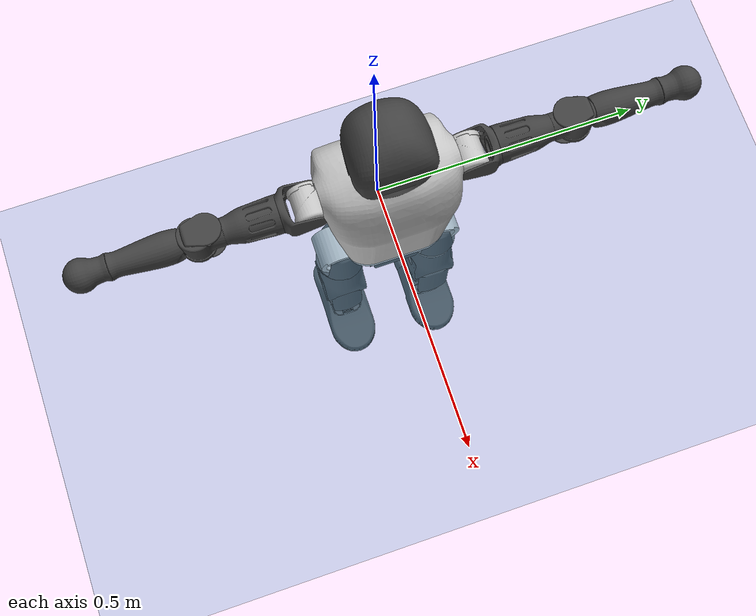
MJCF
<mujoco model="T1">
  <compiler angle="radian" assetdir="assets" balanceinertia="true" inertiafromgeom="false"/>

  <option timestep="0.005" density="1.2" viscosity="2e-05"/>

  <size nkey="1"/>

  <visual>
    <quality shadowsize="8192"/>
    <map shadowclip="0.5"/>
  </visual>

  <default>
    <default class="/">
      <joint armature="0.01" damping="0.01" frictionloss="0.1"/>
      <geom contype="0" conaffinity="0" group="1" solref="-1000 -80"/>
      <site size="0.01 0.005 0.005" group="5"/>
      <general forcelimited="true" biastype="affine" gainprm="25" biasprm="0 -25 -0.6"/>
      <default class="t1">
        <geom rgba="0.25 0.25 0.25 1"/>
        <default class="visual">
          <geom type="mesh" group="2"/>
        </default>
        <default class="collision">
          <geom group="3"/>
        </default>
        <default class="foot">
          <geom size="0.1115 0.05 0.015" type="box" condim="6" group="4" priority="1" solimp="0.015 1 0.015"/>
        </default>
        <default class="reward_collision_sphere">
          <geom group="5" rgba="1 0 0 1"/>
        </default>
      </default>
    </default>
  </default>

  <asset>
    <texture type="skybox" colorspace="auto" name="//unnamed_texture_0" builtin="gradient" rgb1="0.95 0.95 0.95" rgb2="0.95 0.95 0.95" width="100" height="600"/>
    <texture type="2d" colorspace="auto" name="texplane" builtin="checker" rgb1="0.345 0.575 0.748" rgb2="0.345 0.575 0.748" markrgb="1 1 1" width="512" height="512"/>
    <material name="MatPlane" class="/" texture="texplane" texuniform="true" texrepeat="2 2" specular="0.9"/>
    <mesh name="Trunk" class="/" file="Trunk.stl"/>
    <mesh name="H1" class="/" file="H1.stl"/>
    <mesh name="H2" class="/" file="H2.stl"/>
    <mesh name="AL1" class="/" file="AL1.stl"/>
    <mesh name="AL2" class="/" file="AL2.stl"/>
    <mesh name="AL3" class="/" file="AL3.stl"/>
    <mesh name="left_hand_link" class="/" file="left_hand_link.stl"/>
    <mesh name="AR1" class="/" file="AR1.stl"/>
    <mesh name="AR2" class="/" file="AR2.stl"/>
    <mesh name="AR3" class="/" file="AR3.stl"/>
    <mesh name="right_hand_link" class="/" file="right_hand_link.stl"/>
    <mesh name="Waist" class="/" file="Waist.stl"/>
    <mesh name="Hip_Pitch_Left" class="/" file="Hip_Pitch_Left.stl"/>
    <mesh name="Hip_Roll_Left" class="/" file="Hip_Roll_Left.stl"/>
    <mesh name="Hip_Yaw_Left" class="/" file="Hip_Yaw_Left.stl"/>
    <mesh name="Shank_Left" class="/" file="Shank_Left.stl"/>
    <mesh name="Ankle_Cross_Left" class="/" file="Ankle_Cross_Left.stl"/>
    <mesh name="left_foot_link" class="/" file="left_foot_link.stl"/>
    <mesh name="Hip_Pitch_Right" class="/" file="Hip_Pitch_Right.stl"/>
    <mesh name="Hip_Roll_Right" class="/" file="Hip_Roll_Right.stl"/>
    <mesh name="Hip_Yaw_Right" class="/" file="Hip_Yaw_Right.stl"/>
    <mesh name="Shank_Right" class="/" file="Shank_Right.stl"/>
    <mesh name="Ankle_Cross_Right" class="/" file="Ankle_Cross_Right.stl"/>
    <mesh name="right_foot_link" class="/" file="right_foot_link.stl"/>
  </asset>

  <worldbody>
    <geom name="floor" class="/" size="100 100 0.125" type="plane" group="0" material="MatPlane"/>
    <light name="toplight_shadow" class="/" pos="0 0 5" dir="0.0990148 0.0990148 -0.990148" type="directional" ambient="0.04 0.04 0.04" diffuse="0.55 0.55 0.55" specular="0.12 0.12 0.12"/>
    <light name="toplight_fill" class="/" pos="0 0 5" dir="0.0990148 0.0990148 -0.990148" type="directional" castshadow="false" ambient="0.04 0.04 0.04" diffuse="0.3 0.3 0.3" specular="0.08 0.08 0.08"/>
    <body name="trunk" childclass="t1" pos="-0.00237684 0.00140548 -6.78811e-05" quat="1 -0.000752909 0.000433858 0.000155382">
      <inertial pos="0.0480491 0.00197882 0.08954" quat="0.999973 0.00250058 -0.00649555 0.00219346" mass="7.44793" diaginertia="0.0432552 0.0413158 0.0200941"/>
      <joint name="//unnamed_joint_0" type="free" armature="0" damping="0" frictionloss="0"/>
      <geom name="//unnamed_geom_1" class="visual" rgba="0.76 0.76 0.76 1" mesh="Trunk"/>
      <geom name="//unnamed_geom_2" class="collision" size="0.0645966 0.0861289 0.129193" pos="0.0518325 0 0.0994135" type="box"/>
      <geom name="//unnamed_geom_3" class="reward_collision_sphere" size="0.0990482" pos="0.0518325 0 0.0828446"/>
      <geom name="//unnamed_geom_4" class="reward_collision_sphere" size="0.0129193" pos="0.0518325 0.0757814 0"/>
      <geom name="//unnamed_geom_5" class="reward_collision_sphere" size="0.0129193" pos="0.0518325 -0.0757814 0"/>
      <geom name="//unnamed_geom_6" class="reward_collision_sphere" size="0.0129193" pos="0.0518325 0.0953954 0.14912"/>
      <geom name="//unnamed_geom_7" class="reward_collision_sphere" size="0.0129193" pos="0.0518325 -0.0953954 0.14912"/>
      <site name="imu" pos="-0.000344191 -0.013227 0.0131608" size="0.00861289"/>
      <camera name="track" pos="0 -1.78309 0" quat="0.707107 0.707107 0 0" mode="trackcom"/>
      <camera name="ego_camera" pos="0.105393 0 0.347947" quat="-0.5 -0.5 0.5 0.5"/>
      <body name="H1" pos="0.0520039 -0.00186343 0.200985" quat="1 4.67775e-05 9.88064e-05 -1.24953e-05">
        <inertial pos="-0.000208533 0.000643336 0.0474186" quat="0.762524 -0.0218439 -0.0167236 0.646375" mass="0.270289" diaginertia="0.000116573 0.000124424 5.74318e-05"/>
        <joint name="AAHead_yaw" pos="0 0 0" axis="0.011098 -0.00339843 0.999933" range="-1.61244 1.58138" armature="0.00885982" damping="0" frictionloss="0.0684681"/>
        <geom name="//unnamed_geom_8" class="visual" mesh="H1"/>
        <body name="H2" pos="-0.00226864 -0.00017909 0.0518901" quat="1 0.00029021 9.38765e-05 -0.000349777">
          <inertial pos="0.00789452 0.000998814 0.0814756" quat="0.989975 0.0963372 -0.0691983 -0.0766848" mass="0.402803" diaginertia="0.000972197 0.00113415 0.000662463"/>
          <joint name="Head_pitch" pos="0 0 0" axis="0.00753994 -0.999945 -0.00724152" range="-1.23945 0.37391" armature="0.00982241" damping="0.0103229" frictionloss="0.0747578"/>
          <geom name="//unnamed_geom_9" class="visual" mesh="H2"/>
          <geom name="//unnamed_geom_10" class="collision" size="0.0689031" pos="0.00863874 0 0.0911291"/>
          <geom name="//unnamed_geom_11" class="reward_collision_sphere" size="0.077516" pos="0.0172775 0 0.0828446"/>
        </body>
      </body>
      <body name="AL1" pos="0.0504276 0.099008 0.17882" quat="1 0.000148688 4.23091e-05 0.000259697">
        <inertial pos="-0.00251381 0.0402922 0.00150717" quat="0.497161 0.488605 -0.503629 0.510346" mass="0.329957" diaginertia="0.000654721 0.000747361 0.000112918"/>
        <joint name="Left_Shoulder_Pitch" pos="0 0 0" axis="0.00761583 0.999969 -0.00201566" stiffness="0.00107125" range="-3.32914 1.26606" armature="0.0089076" damping="0.00430224" frictionloss="0.0768854"/>
        <geom name="//unnamed_geom_12" class="visual" rgba="0.76 0.76 0.76 1" mesh="AL1"/>
        <body name="AL2" pos="-8.45197e-05 0.0423055 -0.00192862" quat="1 -0.000240788 0.000172828 0.000369953">
          <inertial pos="0.00308698 0.0323445 -0.000417115" quat="0.489422 0.509821 -0.490509 0.509853" mass="0.0986992" diaginertia="0.000188658 0.000194033 6.49769e-05"/>
          <joint name="Left_Shoulder_Roll" pos="0 0 0" axis="-0.999954 0.00739923 0.0060647" range="-1.61841 1.76236" armature="0.00868887" damping="0.00515986" frictionloss="0.0794184"/>
          <geom name="//unnamed_geom_13" class="visual" mesh="AL2"/>
          <body name="AL3" pos="-0.000742033 0.0548129 0.00178718" quat="1 6.59881e-05 -5.42702e-05 -3.99028e-05">
            <inertial pos="0.00278526 0.0767432 0.000210671" quat="0.713262 0.700879 -0.00313115 -0.00391016" mass="0.650426" diaginertia="0.0063052 0.00738661 0.000243826"/>
            <joint name="Left_Elbow_Pitch" pos="0 0 0" axis="0.00320277 -0.999994 -0.0012159" range="-2.2544 2.26437" armature="0.0082514" damping="0.0110633" frictionloss="0.0761153"/>
            <geom name="//unnamed_geom_14" class="visual" mesh="AL3"/>
            <geom name="//unnamed_geom_15" class="collision" size="0.0258387 0.0645966" pos="0 0.0445773 0" quat="0.707105 0.707108 0 0" type="cylinder"/>
            <geom name="//unnamed_geom_16" class="reward_collision_sphere" size="0.0310064"/>
            <body name="left_hand_link" pos="-0.00130986 0.130685 0.00403242" quat="0.999999 -0.000811775 -0.000603246 -0.000151751">
              <inertial pos="0.000612182 0.0972475 0.00103588" quat="0.712468 0.701693 0.00336952 -0.00223562" mass="0.207376" diaginertia="0.00398933 0.00466324 8.79755e-05"/>
              <joint name="Left_Elbow_Yaw" pos="0 0 0" axis="-0.0119718 0.002226 0.999926" range="-2.48591 -0.0474749" armature="0.00795303" damping="0.0187834" frictionloss="0.0897531"/>
              <geom name="//unnamed_geom_17" class="visual" mesh="left_hand_link"/>
              <geom name="//unnamed_geom_18" class="collision" size="0.0258387 0.0753628" pos="0 0.115901 0" quat="0.707105 0.707108 0 0" type="cylinder"/>
              <geom name="//unnamed_geom_19" class="reward_collision_sphere" size="0.0430644"/>
              <geom name="//unnamed_geom_20" class="reward_collision_sphere" size="0.0301451" pos="0 0.09807 0"/>
              <geom name="//unnamed_geom_21" class="reward_collision_sphere" size="0.0301451" pos="0 0.191682 0"/>
            </body>
          </body>
        </body>
      </body>
      <body name="AR1" pos="0.0509252 -0.0913651 0.180472" quat="0.999999 0.00017518 -0.000735567 -0.000892786">
        <inertial pos="-0.00145748 -0.0388723 -0.00288476" quat="0.497076 0.502593 -0.505729 0.494524" mass="0.33265" diaginertia="0.000642009 0.000739574 0.000111793"/>
        <joint name="Right_Shoulder_Pitch" pos="0 0 0" axis="0.012756 -0.999918 0.000948388" range="-1.23434 3.29558" armature="0.00969562" damping="0.0102512" frictionloss="0.0842365"/>
        <geom name="//unnamed_geom_22" class="visual" rgba="0.76 0.76 0.76 1" mesh="AR1"/>
        <body name="AR2" pos="-3.31364e-05 -0.0429426 0.00121798" quat="1 0.000544349 6.48962e-05 -0.00018533">
          <inertial pos="0.00207921 -0.0346513 -0.000881469" quat="0.509704 0.490463 -0.516943 0.482098" mass="0.0996926" diaginertia="0.000180741 0.00018374 6.86677e-05"/>
          <joint name="Right_Shoulder_Roll" pos="0 0 0" axis="-0.999924 0.00447678 -0.0115173" range="-1.75606 1.57149" armature="0.00957438" damping="0.00876163" frictionloss="0.07783"/>
          <geom name="//unnamed_geom_23" class="visual" mesh="AR2"/>
          <body name="AR3" pos="-0.0017435 -0.0525366 -0.00211665" quat="1 -0.000173089 0.000321826 -0.000155245">
            <inertial pos="-0.00400512 -0.0753049 -0.00160325" quat="0.709845 0.70435 0.00312208 -0.00141631" mass="0.648833" diaginertia="0.00635751 0.00721272 0.000233729"/>
            <joint name="Right_Elbow_Pitch" pos="0 0 0" axis="0.000270821 1 -0.000654491" range="-2.32012 2.28574" armature="0.00830897" damping="0.00788875" frictionloss="0.0685439"/>
            <geom name="//unnamed_geom_24" class="visual" mesh="AR3"/>
            <geom name="//unnamed_geom_25" class="collision" size="0.0258387 0.0645966" pos="0 -0.0445773 0" quat="0.707105 0.707108 0 0" type="cylinder"/>
            <geom name="//unnamed_geom_26" class="reward_collision_sphere" size="0.0310064"/>
            <body name="right_hand_link" pos="-0.00118089 -0.128008 0.00263806" quat="1 -0.000182295 -0.000169215 -8.42025e-06">
              <inertial pos="-0.000378663 -0.0948288 -0.00137314" quat="0.704997 0.70921 -0.000812406 0.00053017" mass="0.202343" diaginertia="0.00376848 0.00438935 7.85127e-05"/>
              <joint name="Right_Elbow_Yaw" pos="0 0 0" axis="0.0173349 0.00296624 0.999845" range="-0.0531578 2.44091" armature="0.0076349" damping="0.00802532" frictionloss="0.0922744"/>
              <geom name="//unnamed_geom_27" class="visual" mesh="right_hand_link"/>
              <geom name="//unnamed_geom_28" class="collision" size="0.0258387 0.0753628" pos="0 -0.115901 0" quat="0.707105 0.707108 0 0" type="cylinder"/>
              <geom name="//unnamed_geom_29" class="reward_collision_sphere" size="0.0430644"/>
              <geom name="//unnamed_geom_30" class="reward_collision_sphere" size="0.0301451" pos="0 -0.09807 0"/>
              <geom name="//unnamed_geom_31" class="reward_collision_sphere" size="0.0301451" pos="0 -0.191682 0"/>
            </body>
          </body>
        </body>
      </body>
      <body name="Waist" pos="0.0581605 -0.00329615 -0.0948447" quat="0.999999 -0.000711218 0.00074583 0.00111324">
        <inertial pos="0.00448562 -0.000238195 0.00580124" quat="0.984166 0.00501291 -0.176828 -0.0111482" mass="1.6351" diaginertia="0.00247037 0.0027914 0.0017316"/>
        <joint name="Waist" pos="0 0 0" axis="-0.000904933 -0.00489208 0.999988" stiffness="0.00013021" range="-1.56457 1.62374" armature="0.0088173" damping="0.00809347" frictionloss="0.0822723"/>
        <geom name="//unnamed_geom_32" class="visual" mesh="Waist"/>
        <body name="Hip_Pitch_Left" pos="0.0027206 0.0944244 -0.00158106" quat="0.999999 -0.000458247 0.00126966 0.000439035">
          <inertial pos="-0.0016568 -0.00634783 -0.0153059" quat="0.973435 0.228666 0.0107363 0.00445499" mass="0.6716" diaginertia="0.000903848 0.00083018 0.000480312"/>
          <joint name="Left_Hip_Pitch" pos="0 0 0" axis="0.00143913 0.999994 -0.0032252" range="-1.75777 1.52093" armature="0.00922416" damping="0.0145365" frictionloss="0.0873754"/>
          <geom name="//unnamed_geom_33" class="visual" rgba="0.76 0.76 0.76 1" mesh="Hip_Pitch_Left"/>
          <body name="Hip_Roll_Left" pos="0.00474742 -0.0025157 -0.00958968" quat="1 -3.5918e-06 -4.22098e-06 -4.44675e-05">
            <inertial pos="0.000397006 0.00347592 -0.0468146" quat="0.707038 -0.00667858 -0.0049127 0.707127" mass="0.247903" diaginertia="0.000855262 0.000886356 0.000190826"/>
            <joint name="Left_Hip_Roll" pos="0 0 0" axis="-0.999954 0.00391226 -0.00880123" range="-1.61642 0.234043" armature="0.00973869" damping="0.0274777" frictionloss="0.0847446"/>
            <geom name="//unnamed_geom_34" class="visual" mesh="Hip_Roll_Left"/>
            <geom name="//unnamed_geom_35" class="reward_collision_sphere" size="0.0473709"/>
            <body name="Hip_Yaw_Left" pos="0.00625747 -0.00237274 -0.0650797" quat="1 -9.29044e-05 -0.000157266 -0.000588498">
              <inertial pos="-0.00375414 0.00168924 -0.0741617" quat="0.690301 -0.0330745 -0.0410787 0.721598" mass="1.41448" diaginertia="0.012293 0.014833 0.00104224"/>
              <joint name="Left_Hip_Yaw" pos="0 0 0" axis="0.00406736 -0.0018252 -0.99999" stiffness="0.00757817" range="-0.934677 0.969684" armature="0.0088456" damping="0.00782322" frictionloss="0.0824337"/>
              <geom name="//unnamed_geom_36" class="visual" mesh="Hip_Yaw_Left"/>
              <geom name="//unnamed_geom_37" class="collision" size="0.0430644 0.0689031" type="cylinder"/>
              <body name="Shank_Left" pos="-0.00509275 -0.000549235 -0.102064" quat="1 -0.000415701 -0.00014319 -0.000507655">
                <inertial pos="-0.00469646 -0.000605335 -0.10244" quat="0.997351 -0.000559615 -0.0199146 0.0699583" mass="1.14966" diaginertia="0.0173331 0.020903 0.000753491"/>
                <joint name="Left_Knee_Pitch" pos="0 0 0" axis="-0.00840225 0.999959 0.00337619" range="-0.00630473 2.32279" armature="0.00881104" damping="0.0026281" frictionloss="0.0845894"/>
                <geom name="//unnamed_geom_38" class="visual" mesh="Shank_Left"/>
                <geom name="//unnamed_geom_39" class="collision" size="0.0430644 0.0645966" pos="0 0 -0.0994135" type="cylinder"/>
                <geom name="//unnamed_geom_40" class="reward_collision_sphere" size="0.0559838"/>
                <body name="Ankle_Cross_Left" pos="-0.0022099 -0.00130203 -0.236453" quat="1 -0.000347817 -0.000498721 -0.000468339">
                  <inertial pos="0.00100918 0.0028429 -0.00521445" quat="0.443331 0.550801 0.551295 0.442887" mass="0.0471238" diaginertia="1.35719e-05 1.42433e-05 4.50483e-06"/>
                  <joint name="Left_Ankle_Pitch" pos="0 0 0" axis="-0.00237618 0.999997 -0.000397891" stiffness="0.000607406" range="-0.878638 0.353632" armature="0.00709632" damping="0.000835531" frictionloss="0.0874509"/>
                  <geom name="//unnamed_geom_41" class="visual" mesh="Ankle_Cross_Left"/>
                  <body name="left_foot_link" pos="-0.00278115 -0.000466997 -0.0096626" quat="0.999998 -0.000915972 -4.98699e-05 0.00187804">
                    <inertial pos="4.31779e-05 -0.00127375 -0.00956934" quat="0.00597738 0.622785 0.00840063 0.782325" mass="0.41832" diaginertia="0.00121678 0.00131467 0.000845043"/>
                    <joint name="Left_Ankle_Roll" pos="0 0 0" axis="-0.999819 -0.00753298 -0.0174675" stiffness="0.00115945" range="-0.395521 0.45452" armature="0.00816483" damping="0.0092864" frictionloss="0.0749509"/>
                    <geom name="//unnamed_geom_42" class="visual" mesh="left_foot_link"/>
                    <geom name="left_foot" class="foot" size="0.102248 0.0479883 0.0116709" pos="0.00863874 0 -0.0124267"/>
                    <geom name="//unnamed_geom_44" class="reward_collision_sphere" size="0.044787" pos="0.00863874 0 -0.0124267"/>
                    <geom name="//unnamed_geom_45" class="reward_collision_sphere" size="0.0258387" pos="0.0820681 -0.0205055 -0.0124267"/>
                    <geom name="//unnamed_geom_46" class="reward_collision_sphere" size="0.0258387" pos="-0.0604712 -0.0205055 -0.0124267"/>
                    <site name="left_foot" class="foot" pos="0.00863874 0 -0.0124267" size="0.00861289"/>
                  </body>
                </body>
              </body>
            </body>
          </body>
        </body>
        <body name="Hip_Pitch_Right" pos="-0.00487638 -0.0959571 0.00416014" quat="1 -8.19649e-05 0.000271111 -0.00010997">
          <inertial pos="0.00326244 0.00847538 -0.0170508" quat="0.971684 -0.236016 0.00563157 -0.00977144" mass="0.655948" diaginertia="0.000862193 0.000818915 0.000498223"/>
          <joint name="Right_Hip_Pitch" pos="0 0 0" axis="-0.00859098 -0.999956 -0.00368847" range="-1.62141 1.78204" armature="0.00760476" damping="0.0207021" frictionloss="0.0962104"/>
          <geom name="//unnamed_geom_47" class="visual" rgba="0.76 0.76 0.76 1" mesh="Hip_Pitch_Right"/>
          <body name="Hip_Roll_Right" pos="-0.00117216 0.000393718 -0.0125426" quat="1 -8.37329e-05 -0.000536352 0.000254924">
            <inertial pos="0.000760979 0.00223668 -0.0440908" quat="0.709928 -0.0110603 -0.00542909 0.704167" mass="0.246758" diaginertia="0.000788327 0.00080607 0.000195899"/>
            <joint name="Right_Hip_Roll" pos="0 0 0" axis="-0.99999 0.000407261 0.00442784" range="-0.244175 1.5738" armature="0.0086313" damping="0.0200355" frictionloss="0.0878775"/>
            <geom name="//unnamed_geom_48" class="visual" mesh="Hip_Roll_Right"/>
            <geom name="//unnamed_geom_49" class="reward_collision_sphere" size="0.0473709"/>
            <body name="Hip_Yaw_Right" pos="0.00345687 -0.00182663 -0.071598" quat="1 1.09018e-05 4.56163e-05 -6.00206e-05">
              <inertial pos="-0.00717198 -0.00214782 -0.0729282" quat="0.714828 -0.0301364 -0.0345247 0.697797" mass="1.35848" diaginertia="0.0116922 0.0135784 0.000949426"/>
              <joint name="Right_Hip_Yaw" pos="0 0 0" axis="-0.000247628 -0.00100343 -0.999999" range="-0.985818 1.02921" armature="0.00950166" damping="0" frictionloss="0.0751296"/>
              <geom name="//unnamed_geom_50" class="visual" mesh="Hip_Yaw_Right"/>
              <geom name="//unnamed_geom_51" class="collision" size="0.0430644 0.0689031" type="cylinder"/>
              <body name="Shank_Right" pos="-0.0107006 -0.00153763 -0.111135" quat="0.999999 0.000828934 5.18629e-05 0.000943314">
                <inertial pos="-0.00644537 0.000969696 -0.100641" quat="0.999261 -0.000682238 -0.0230756 -0.0307425" mass="1.12252" diaginertia="0.0163891 0.0196528 0.000784496"/>
                <joint name="Right_Knee_Pitch" pos="0 0 0" axis="-0.00461736 -0.999984 0.00329346" range="-2.29653 -0.0117346" armature="0.00747779" damping="0.0114656" frictionloss="0.0778469"/>
                <geom name="//unnamed_geom_52" class="visual" mesh="Shank_Right"/>
                <geom name="//unnamed_geom_53" class="collision" size="0.0430644 0.0645966" pos="0 0 -0.0994135" type="cylinder"/>
                <geom name="//unnamed_geom_54" class="reward_collision_sphere" size="0.0559838"/>
                <body name="Ankle_Cross_Right" pos="0.00161311 0.00192246 -0.235263" quat="1 7.58784e-05 -0.000110442 -0.000162724">
                  <inertial pos="-0.00287983 0.00201838 -0.00686327" quat="0.442879 0.55144 0.550792 0.443171" mass="0.0460773" diaginertia="1.36132e-05 1.43192e-05 4.31916e-06"/>
                  <joint name="Right_Ankle_Pitch" pos="0 0 0" axis="0.00524309 -0.999964 -0.00662914" stiffness="0.000965698" range="-0.331589 0.873361" armature="0.00868678" damping="0.0158027" frictionloss="0.0826369"/>
                  <geom name="//unnamed_geom_55" class="visual" mesh="Ankle_Cross_Right"/>
                  <body name="right_foot_link" pos="-0.000823286 -0.00163901 -0.0196653" quat="1 -0.000269381 -0.000100664 -0.00023249">
                    <inertial pos="-8.2853e-05 -0.00122311 -0.00384581" quat="-0.00378126 0.624873 0.00114916 0.780716" mass="0.448948" diaginertia="0.00139298 0.00140015 0.00093356"/>
                    <joint name="Right_Ankle_Roll" pos="0 0 0" axis="-0.999948 -0.000208415 0.0101714" stiffness="0.00633071" range="-0.425232 0.387429" armature="0.0105849" damping="0.0256091" frictionloss="0.0870116"/>
                    <geom name="//unnamed_geom_56" class="visual" mesh="right_foot_link"/>
                    <geom name="right_foot" class="foot" size="0.093905 0.0448672 0.0122857" pos="0.00863874 0 -0.0124267"/>
                    <geom name="//unnamed_geom_58" class="reward_collision_sphere" size="0.0344515"/>
                    <geom name="//unnamed_geom_59" class="reward_collision_sphere" size="0.0258387" pos="0.00863874 0 -0.0124267"/>
                    <geom name="//unnamed_geom_60" class="reward_collision_sphere" size="0.0258387" pos="0.0820681 0.0205055 -0.0124267"/>
                    <geom name="//unnamed_geom_61" class="reward_collision_sphere" size="0.0258387" pos="-0.0604712 0.0205055 -0.0124267"/>
                    <site name="right_foot" class="foot" pos="0.00863874 0 -0.0124267" size="0.00861289"/>
                  </body>
                </body>
              </body>
            </body>
          </body>
        </body>
      </body>
    </body>
  </worldbody>

  <contact>
    <pair class="/" geom1="floor" geom2="left_foot" name="//unnamed_contact_0"/>
    <pair class="/" geom1="floor" geom2="right_foot" name="//unnamed_contact_1"/>
  </contact>

  <actuator>
    <general name="AAHead_yaw" class="/" joint="AAHead_yaw" forcerange="-6.22171 6.22171" gainprm="20.3824" biasprm="0 -20.3824 -0.533666"/>
    <general name="Head_pitch" class="/" joint="Head_pitch" forcerange="-5.95576 5.95576" gainprm="20.3824" biasprm="0 -20.3824 -0.533666"/>
    <general name="Left_Shoulder_Pitch" class="/" joint="Left_Shoulder_Pitch" forcerange="-17.8276 17.8276" gainprm="20.3824" biasprm="0 -20.3824 -0.533666"/>
    <general name="Left_Shoulder_Roll" class="/" joint="Left_Shoulder_Roll" forcerange="-16.4596 16.4596" gainprm="20.3824" biasprm="0 -20.3824 -0.533666"/>
    <general name="Left_Elbow_Pitch" class="/" joint="Left_Elbow_Pitch" forcerange="-15.909 15.909" gainprm="20.3824" biasprm="0 -20.3824 -0.533666"/>
    <general name="Left_Elbow_Yaw" class="/" joint="Left_Elbow_Yaw" forcerange="-16.0685 16.0685" gainprm="20.3824" biasprm="0 -20.3824 -0.533666"/>
    <general name="Right_Shoulder_Pitch" class="/" joint="Right_Shoulder_Pitch" forcerange="-14.2905 14.2905" gainprm="20.3824" biasprm="0 -20.3824 -0.533666"/>
    <general name="Right_Shoulder_Roll" class="/" joint="Right_Shoulder_Roll" forcerange="-15.5988 15.5988" gainprm="20.3824" biasprm="0 -20.3824 -0.533666"/>
    <general name="Right_Elbow_Pitch" class="/" joint="Right_Elbow_Pitch" forcerange="-16.9528 16.9528" gainprm="20.3824" biasprm="0 -20.3824 -0.533666"/>
    <general name="Right_Elbow_Yaw" class="/" joint="Right_Elbow_Yaw" forcerange="-13.815 13.815" gainprm="20.3824" biasprm="0 -20.3824 -0.533666"/>
    <general name="Waist" class="/" joint="Waist" forcerange="-26.8194 26.8194" gainprm="20.3824" biasprm="0 -20.3824 -0.533666"/>
    <general name="Left_Hip_Pitch" class="/" joint="Left_Hip_Pitch" forcerange="-41.1714 41.1714" gainprm="20.3824" biasprm="0 -20.3824 -0.533666"/>
    <general name="Left_Hip_Roll" class="/" joint="Left_Hip_Roll" forcerange="-28.2178 28.2178" gainprm="20.3824" biasprm="0 -20.3824 -0.533666"/>
    <general name="Left_Hip_Yaw" class="/" joint="Left_Hip_Yaw" forcerange="-24.5635 24.5635" gainprm="20.3824" biasprm="0 -20.3824 -0.533666"/>
    <general name="Left_Knee_Pitch" class="/" joint="Left_Knee_Pitch" forcerange="-53.0567 53.0567" gainprm="20.3824" biasprm="0 -20.3824 -0.533666"/>
    <general name="Left_Ankle_Pitch" class="/" joint="Left_Ankle_Pitch" forcerange="-17.0593 17.0593" gainprm="20.3824" biasprm="0 -20.3824 -0.533666"/>
    <general name="Left_Ankle_Roll" class="/" joint="Left_Ankle_Roll" forcerange="-14.1695 14.1695" gainprm="20.3824" biasprm="0 -20.3824 -0.533666"/>
    <general name="Right_Hip_Pitch" class="/" joint="Right_Hip_Pitch" forcerange="-36.1712 36.1712" gainprm="20.3824" biasprm="0 -20.3824 -0.533666"/>
    <general name="Right_Hip_Roll" class="/" joint="Right_Hip_Roll" forcerange="-22.2747 22.2747" gainprm="20.3824" biasprm="0 -20.3824 -0.533666"/>
    <general name="Right_Hip_Yaw" class="/" joint="Right_Hip_Yaw" forcerange="-26.7022 26.7022" gainprm="20.3824" biasprm="0 -20.3824 -0.533666"/>
    <general name="Right_Knee_Pitch" class="/" joint="Right_Knee_Pitch" forcerange="-54.6986 54.6986" gainprm="20.3824" biasprm="0 -20.3824 -0.533666"/>
    <general name="Right_Ankle_Pitch" class="/" joint="Right_Ankle_Pitch" forcerange="-19.4577 19.4577" gainprm="20.3824" biasprm="0 -20.3824 -0.533666"/>
    <general name="Right_Ankle_Roll" class="/" joint="Right_Ankle_Roll" forcerange="-12.5924 12.5924" gainprm="20.3824" biasprm="0 -20.3824 -0.533666"/>
  </actuator>

  <sensor>
    <gyro site="imu" name="imu_angular_velocity"/>
    <velocimeter site="imu" name="imu_linear_velocity"/>
    <framelinvel objtype="site" objname="left_foot" name="left_foot_global_linear_velocity"/>
    <framelinvel objtype="site" objname="right_foot" name="right_foot_global_linear_velocity"/>
  </sensor>

  <keyframe>
    <key name="home" qpos="0 0 0.6385 1 0 0 0 0 0 0 1.4 0 -0.4 0 -1.4 0 0.4 0 -0.4 0 0 0.8 -0.4 0 0.4 0 0 -0.8 0.4 0"/>
  </keyframe>
</mujoco>
